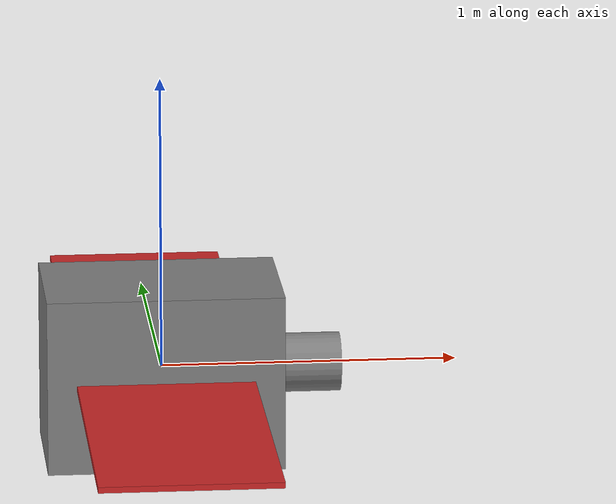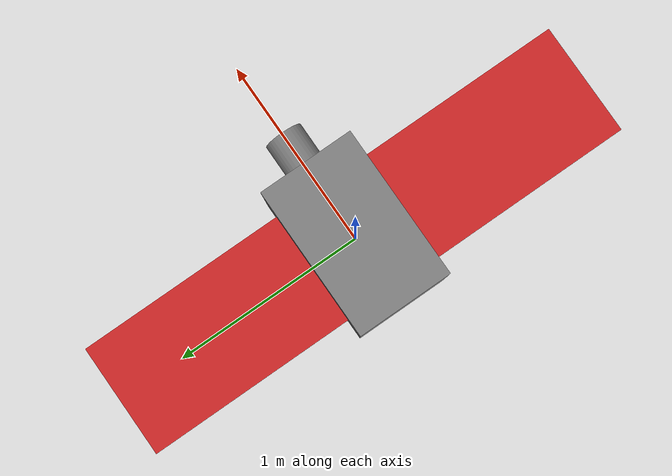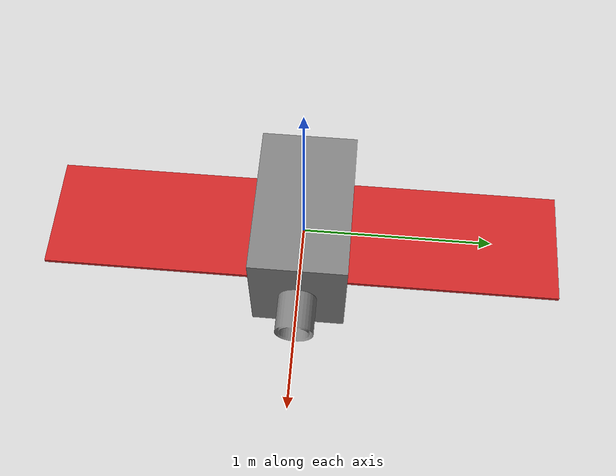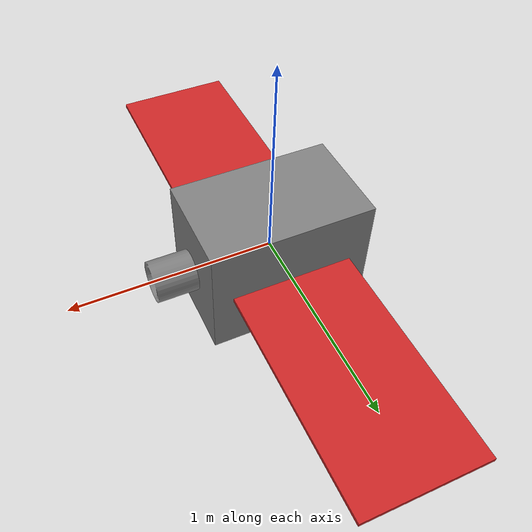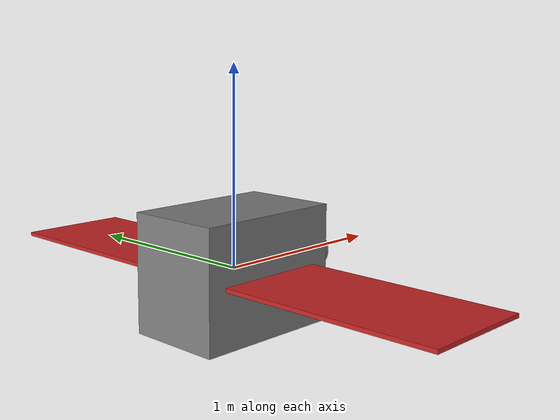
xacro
<?xml version="1.0"?>

<robot name="deputy" xmlns:xacro="http://www.ros.org/wiki/xacro">

    <xacro:property name="cameraSize" value="0.05" /> <!-- Size of square 'camera' box -->
    <xacro:property name="cameraMass" value="0.1" />

    <!-- Define macro for inertia -->
    <xacro:macro name="inertial" params="mass">
        <inertial>
            <origin xyz="0 0 0" />
            <mass value="${mass}" />
            <inertia ixx="1.0" ixy="0.0" ixz="0.0" iyy="100.0" iyz="0.0" izz="1.0" />
        </inertial>
    </xacro:macro>

    <!-- Define macro for visual and collision -->
    <xacro:macro name="visual_collision" params="size">
        <visual>
            <origin rpy="0 0 0" xyz="0 0 0" />
            <geometry>
                <box size="${size}" />
            </geometry>
            <material name="grey">
                <color rgba="0.5 0.5 0.5 1"/>
            </material>
            <gravity>0</gravity>
        </visual>
        <collision>
            <origin rpy="0 0 0" xyz="0 0 0" />
            <geometry>
                <box size="${size}" />
            </geometry>
        </collision>
    </xacro:macro>

    <!-- Define body_link using macros -->
    <link name="body_link">
        <xacro:inertial mass="1.0" />
        <xacro:visual_collision size="0.8 0.5 0.6" />
    </link>

    <!-- Define dock_link using macros -->
    <link name="dock_link">
        <xacro:inertial mass="1.0" />
        <visual>
            <origin rpy="1.570795 1.5670795 1.5670795" xyz="0.0 0.0 0.0"/>
            <geometry>
                <mesh filename="package://ss_sim/meshes/hollow_cylinder_closed.stl" scale="1 1 1"/>
            </geometry>
            <material name="grey">
                <color rgba="0.5 0.5 0.5 1"/>
            </material>
        </visual>
        <collision>
            <origin rpy="1.570795 1.5670795 1.5670795" xyz="0.0 0.0 0.0"/>
            <geometry>
                <mesh filename="package://ss_sim/meshes/hollow_cylinder_closed.stl" scale="1 1 1"/>
            </geometry>
        </collision>
    </link>

    <!-- Define dock_joint -->
    <joint name="dock_joint" type="fixed">
        <parent link="body_link"/>
        <child link="dock_link"/>
        <origin xyz="0.405 0.0 0.0" rpy="0 0 0"/>
        <axis xyz="0.0 1.0 0.0"/>
    </joint>

       <!-- Define plate_l using macros -->
       <link name="plate_l">
        <collision>
          <origin xyz="0 0 0" rpy="0 0 0"/>
          <geometry>
        <box size="0.6 1.5 0.02"/>
          </geometry>
        </collision>

        <visual>
          <origin xyz="0 0 0" rpy="0 0 0"/>
          <geometry>
        <box size="0.6 1.5 0.02"/>
          </geometry>
          <material name="red"/>
        </visual>

        <inertial>
          <mass value="${cameraMass}" />
          <origin xyz="0 0 0" rpy="0 0 0"/>
          <box_inertia m="${cameraMass}"  x="${cameraSize}" y="${cameraSize}" z="${cameraSize}" />
          <inertia ixx="1e-6" ixy="0" ixz="0" iyy="1e-6" iyz="0" izz="1e-6" />
        </inertial>
      </link>

    <!-- Define plate_l_joint -->
    <joint name="plate_l_joint" type="fixed">
        <parent link="body_link"/>
        <child link="plate_l"/>
        <origin xyz="0.0 -0.6 0.0" rpy="0 0 0"/>
        <axis xyz="0.0 1.0 0.0"/>
    </joint>

        <!-- Define plate_r using macros -->
        <link name="plate_r">
          <collision>
            <origin xyz="0 0 0" rpy="0 0 0"/>
            <geometry>
          <box size="0.6 1.5 0.02"/>
            </geometry>
          </collision>

          <visual>
            <origin xyz="0 0 0" rpy="0 0 0"/>
            <geometry>
          <box size="0.6 1.5 0.02"/>
            </geometry>
            <material name="red"/>
          </visual>

          <inertial>
            <mass value="${cameraMass}" />
            <origin xyz="0 0 0" rpy="0 0 0"/>
            <box_inertia m="${cameraMass}"  x="${cameraSize}" y="${cameraSize}" z="${cameraSize}" />
            <inertia ixx="1e-6" ixy="0" ixz="0" iyy="1e-6" iyz="0" izz="1e-6" />
          </inertial>
        </link>

      <!-- Define plate_r_joint -->
      <joint name="plate_r_joint" type="fixed">
          <parent link="body_link"/>
          <child link="plate_r"/>
          <origin xyz="0.0 0.6 0.0" rpy="0 0 0"/>
          <axis xyz="0.0 1.0 0.0"/>
      </joint>

    <!-- Gazebo configuration for body_link and dock_link -->
    <gazebo reference = "dock_link">
		<gravity>false</gravity>
        <self_collide>true</self_collide>
	</gazebo>
	<gazebo reference = "body_link">
		<gravity>false</gravity>
        <self_collide>true</self_collide>
	</gazebo>
	<gazebo reference="body_link">
		<material>sat/body</material>
	</gazebo>
  <gazebo reference="plate_r">
		<material>sat/plate</material>
	</gazebo>
  <gazebo reference="plate_l">
		<material>sat/plate</material>
	</gazebo>
	<gazebo reference="dock_link">
		<material>Gazebo/Grey</material>
	</gazebo>

</robot>
